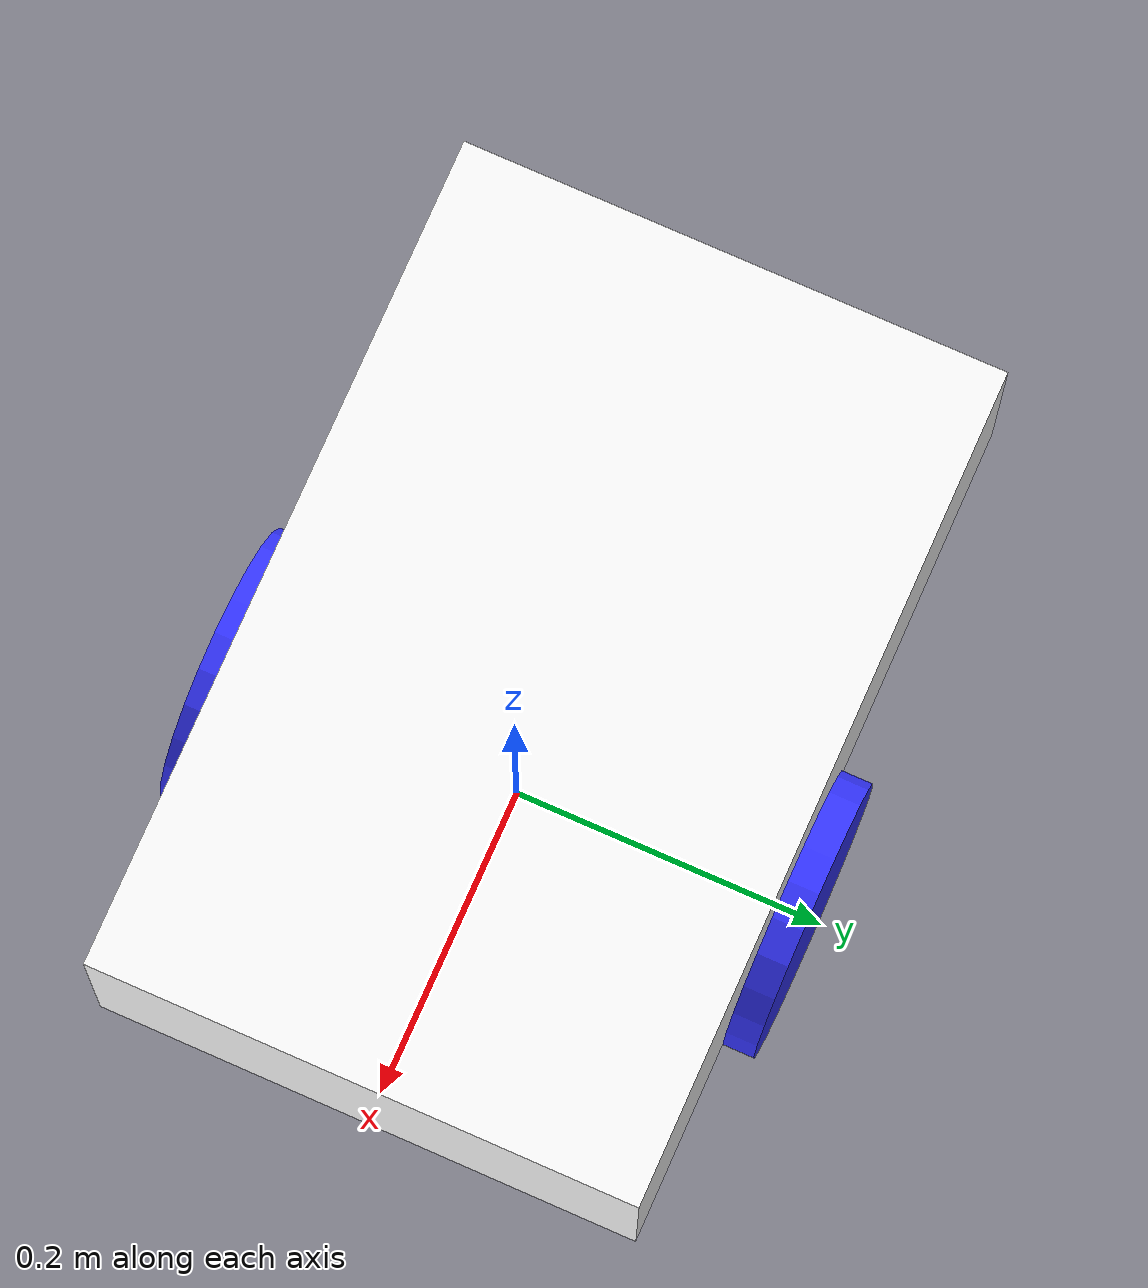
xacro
<?xml version="1.0"?>
<robot xmlns:xacro="http://www.ros.org/wiki/xacro" >

    <xacro:include filename="inertial_macros.xacro"/>

<!--Parameters-->
    <xacro:property name="wheel_radius" value="0.09" />`

    <material name="white">
        <color rgba="1 1 1 1" />
    </material>

    <material name="orange">
        <color rgba="1 0.3 0.1 1"/>
    </material>

    <material name="blue">
        <color rgba="0.2 0.2 1 1"/>
    </material>

    <material name="black">
        <color rgba="0 0 0 1"/>
    </material>

    <material name="red">
        <color rgba="1 0 0 1"/>
    </material>

    <!-- BASE LINK -->

    <link name="base_link">

    </link>

    <!-- BASE_FOOTPRINT LINK -->

    <joint name="base_footprint_joint" type="fixed">
        <parent link="base_link"/>
        <child link="base_footprint"/>
        <origin xyz="0 0 0" rpy="0 0 0"/>
    </joint>

    <link name="base_footprint">
    </link>

    <!-- CHASSIS LINK -->

    <joint name="chassis_joint" type="fixed">
        <parent link="base_link"/>
        <child link="chassis"/>
        <origin xyz="-0.2 0 0"/>
    </joint>

    <link name="chassis">
        <visual>
            <origin xyz="0.15 0 0.075"/>
            <geometry>
                <box size="0.54 0.35 0.15"/>
            </geometry>
            <material name="white"/>
        </visual>
        <collision>
            <origin xyz="0.15 0 0.075"/>
            <geometry>
                <box size="0.54 0.35 0.15"/>
            </geometry>
        </collision>
        <xacro:inertial_box mass="0.5" x="0.3" y="0.3" z="0.15">
            <origin xyz="0.15 0 0.075" rpy="0 0 0"/>
        </xacro:inertial_box>
    </link>

    <gazebo reference="chassis">
        <material>Gazebo/White</material>
    </gazebo>

    <!-- LEFT WHEEL LINK -->

    <joint name="left_wheel_joint" type="continuous">
        <parent link="base_link"/>
        <child link="left_wheel"/>
        <origin xyz="0 0.175 0" rpy="-${pi/2} 0 0" />
        <axis xyz="0 0 1"/>
    </joint>

    <link name="left_wheel">
        <visual>
            <geometry>
                <cylinder radius="${wheel_radius}" length="0.04"/>
            </geometry>
            <material name="blue"/>
        </visual>
        <collision>
            <geometry>
                <sphere radius="${wheel_radius}" />
            </geometry>
        </collision>
        <xacro:inertial_cylinder mass="0.1" length="0.04" radius="0.05">
            <origin xyz="0 0 0" rpy="0 0 0"/>
        </xacro:inertial_cylinder>
    </link>
    <gazebo reference="left_wheel">
        <material>Gazebo/Blue</material>
    </gazebo>

    <!-- RIGHT WHEEL LINK -->

    <joint name="right_wheel_joint" type="continuous">
        <parent link="base_link"/>
        <child link="right_wheel"/>
        <origin xyz="0 -0.175 0" rpy="${pi/2} 0 0" />
        <axis xyz="0 0 -1"/>
    </joint>

    <link name="right_wheel">
        <visual>
            <geometry>
                <cylinder radius="${wheel_radius}" length="0.04"/>
            </geometry>
            <material name="blue"/>
        </visual>
        <collision>
            <geometry>
                <sphere radius="${wheel_radius}" />
            </geometry>
        </collision>
        <xacro:inertial_cylinder mass="0.1" length="0.04" radius="0.05">
            <origin xyz="0 0 0" rpy="0 0 0"/>
        </xacro:inertial_cylinder>
    </link>
    <gazebo reference="right_wheel">
        <material>Gazebo/Blue</material>
    </gazebo>

    <!-- WEED WHACKER WHEEL LINK -->

    <joint name="whacker_wheel_joint" type="continuous">
        <parent link="chassis"/>
        <child link="whacker_wheel"/>
        <origin xyz="0.3 0 0"/>
    </joint>

    <link name="whacker_wheel">
        <visual>
            <geometry>
                <sphere radius="0.08"/>
            </geometry>
            <material name="black"/>
        </visual>
        <collision>
            <geometry>
                <sphere radius="0.08"/>
            </geometry>
        </collision>
        <xacro:inertial_sphere mass="0.1" radius="0.08">
            <origin xyz="0 0 0" rpy="0 0 0"/>
        </xacro:inertial_sphere>
    </link>
    <gazebo reference="whacker_wheel">
        <material>Gazebo/Black</material>
        <mu1 value="0.001"/>
        <mu2 value="0.001"/>

    </gazebo>

</robot>
